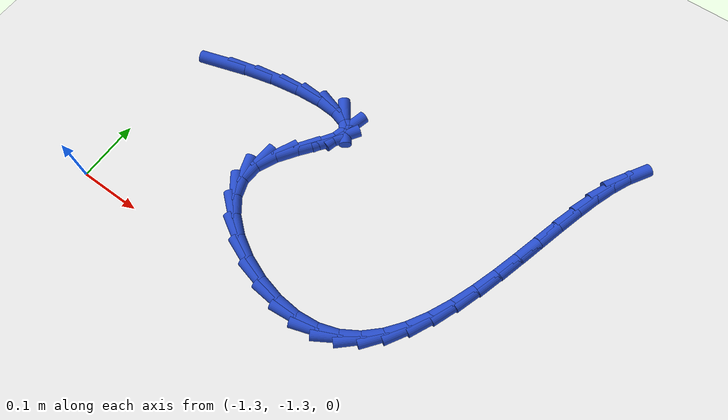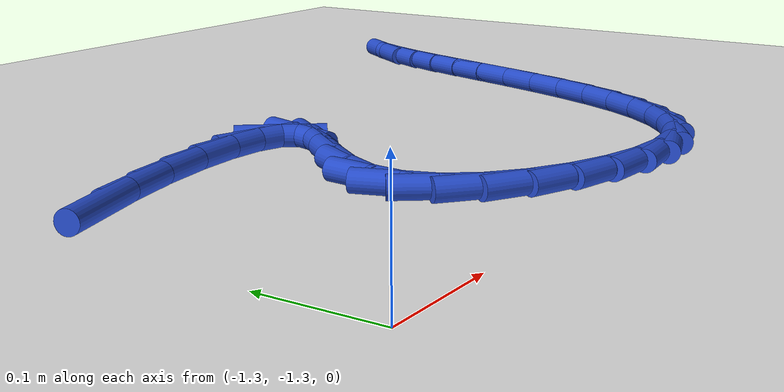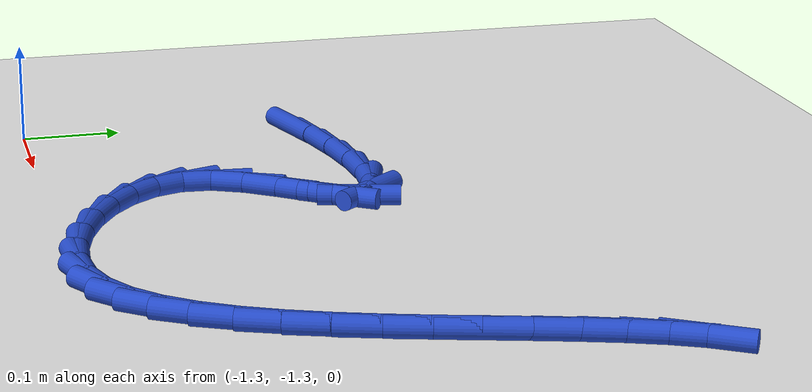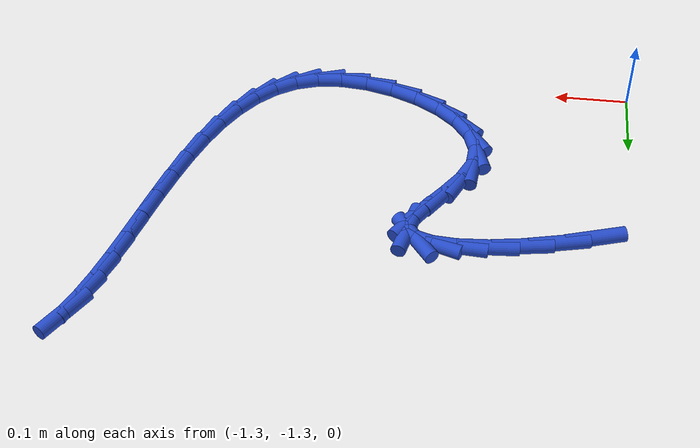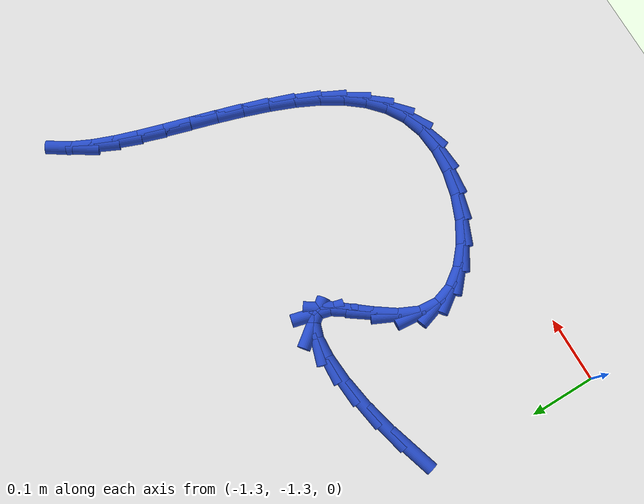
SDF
<sdf version="1.6">
 <world name="default">
  <model name="ground_plane">
   <static>1</static>
   <link name="link">
    <collision name="collision">
     <geometry><plane><normal>0 0 1</normal><size>100 100</size></plane></geometry>
     <surface><friction><ode><mu>100</mu><mu2>50</mu2></ode></friction></surface>
    </collision>
    <visual name="visual">
     <cast_shadows>0</cast_shadows>
     <geometry><plane><normal>0 0 1</normal><size>100 100</size></plane></geometry>
     <material>
      <script><uri>file://media/materials/scripts/gazebo.material</uri><name>Gazebo/WhiteGlow</name></script>
     </material>
    </visual>
   </link>
  </model>
  <model name="line">
   <link name="link_215">
    <pose>-1.2507736268615108 -1.02177599579038 0.01 0 1.57 0.2934605467391951</pose>
    <collision name="collision">
     <geometry><cylinder><radius>0.01</radius><length>0.08</length></cylinder></geometry>
    </collision>
    <visual name="visual">
     <material>
      <script><name>Gazebo/Blue</name><uri>file://media/materials/scripts/gazebo.material</uri></script>
     </material>
     <geometry><cylinder><radius>0.01</radius><length>0.08</length></cylinder></geometry>
    </visual>
   </link>
   <link name="link_216">
    <pose>-1.204982352005964 -1.0079385407797132 0.01 0 1.57 0.2246741513058187</pose>
    <collision name="collision">
     <geometry><cylinder><radius>0.01</radius><length>0.08</length></cylinder></geometry>
    </collision>
    <visual name="visual">
     <material>
      <script><name>Gazebo/Blue</name><uri>file://media/materials/scripts/gazebo.material</uri></script>
     </material>
     <geometry><cylinder><radius>0.01</radius><length>0.08</length></cylinder></geometry>
    </visual>
   </link>
   <link name="link_217">
    <pose>-1.1590670753384784 -0.9974454088323178 0.01 0 1.57 0.15213590867513985</pose>
    <collision name="collision">
     <geometry><cylinder><radius>0.01</radius><length>0.08</length></cylinder></geometry>
    </collision>
    <visual name="visual">
     <material>
      <script><name>Gazebo/Blue</name><uri>file://media/materials/scripts/gazebo.material</uri></script>
     </material>
     <geometry><cylinder><radius>0.01</radius><length>0.08</length></cylinder></geometry>
    </visual>
   </link>
   <link name="link_218">
    <pose>-1.1152984039838951 -0.9907347688441547 0.01 0 1.57 0.06387134855542105</pose>
    <collision name="collision">
     <geometry><cylinder><radius>0.01</radius><length>0.08</length></cylinder></geometry>
    </collision>
    <visual name="visual">
     <material>
      <script><name>Gazebo/Blue</name><uri>file://media/materials/scripts/gazebo.material</uri></script>
     </material>
     <geometry><cylinder><radius>0.01</radius><length>0.08</length></cylinder></geometry>
    </visual>
   </link>
   <link name="link_219">
    <pose>-1.0762245483038024 -0.9882356696646608 0.01 0 1.57 -0.06717601429145721</pose>
    <collision name="collision">
     <geometry><cylinder><radius>0.01</radius><length>0.08</length></cylinder></geometry>
    </collision>
    <visual name="visual">
     <material>
      <script><name>Gazebo/Blue</name><uri>file://media/materials/scripts/gazebo.material</uri></script>
     </material>
     <geometry><cylinder><radius>0.01</radius><length>0.08</length></cylinder></geometry>
    </visual>
   </link>
   <link name="link_220">
    <pose>-1.0443937186597894 -0.9903771601432736 0.01 0 1.57 -0.3162111757153607</pose>
    <collision name="collision">
     <geometry><cylinder><radius>0.01</radius><length>0.08</length></cylinder></geometry>
    </collision>
    <visual name="visual">
     <material>
      <script><name>Gazebo/Blue</name><uri>file://media/materials/scripts/gazebo.material</uri></script>
     </material>
     <geometry><cylinder><radius>0.01</radius><length>0.08</length></cylinder></geometry>
    </visual>
   </link>
   <link name="link_221">
    <pose>-1.0223541254134445 -0.9975882891294299 0.01 0 1.57 -0.9188998761295901</pose>
    <collision name="collision">
     <geometry><cylinder><radius>0.01</radius><length>0.08</length></cylinder></geometry>
    </collision>
    <visual name="visual">
     <material>
      <script><name>Gazebo/Blue</name><uri>file://media/materials/scripts/gazebo.material</uri></script>
     </material>
     <geometry><cylinder><radius>0.01</radius><length>0.08</length></cylinder></geometry>
    </visual>
   </link>
   <link name="link_222">
    <pose>-1.0126539789263564 -1.010298105472567 0.01 0 1.57 1.3241809344505466</pose>
    <collision name="collision">
     <geometry><cylinder><radius>0.01</radius><length>0.08</length></cylinder></geometry>
    </collision>
    <visual name="visual">
     <material>
      <script><name>Gazebo/Blue</name><uri>file://media/materials/scripts/gazebo.material</uri></script>
     </material>
     <geometry><cylinder><radius>0.01</radius><length>0.08</length></cylinder></geometry>
    </visual>
   </link>
   <link name="link_223">
    <pose>-1.017317076125975 -1.0288215902137625 0.01 0 1.57 0.9751295491909436</pose>
    <collision name="collision">
     <geometry><cylinder><radius>0.01</radius><length>0.08</length></cylinder></geometry>
    </collision>
    <visual name="visual">
     <material>
      <script><name>Gazebo/Blue</name><uri>file://media/materials/scripts/gazebo.material</uri></script>
     </material>
     <geometry><cylinder><radius>0.01</radius><length>0.08</length></cylinder></geometry>
    </visual>
   </link>
   <link name="link_224">
    <pose>-1.0332754723575097 -1.0523661940273832 0.01 0 1.57 0.9050565813839557</pose>
    <collision name="collision">
     <geometry><cylinder><radius>0.01</radius><length>0.08</length></cylinder></geometry>
    </collision>
    <visual name="visual">
     <material>
      <script><name>Gazebo/Blue</name><uri>file://media/materials/scripts/gazebo.material</uri></script>
     </material>
     <geometry><cylinder><radius>0.01</radius><length>0.08</length></cylinder></geometry>
    </visual>
   </link>
   <link name="link_225">
    <pose>-1.0545978044555704 -1.0795165309999861 0.01 0 1.57 0.9557508188441666</pose>
    <collision name="collision">
     <geometry><cylinder><radius>0.01</radius><length>0.08</length></cylinder></geometry>
    </collision>
    <visual name="visual">
     <material>
      <script><name>Gazebo/Blue</name><uri>file://media/materials/scripts/gazebo.material</uri></script>
     </material>
     <geometry><cylinder><radius>0.01</radius><length>0.08</length></cylinder></geometry>
    </visual>
   </link>
   <link name="link_226">
    <pose>-1.0753207930861448 -1.108850272971479 0.01 0 1.57 1.1310054829048446</pose>
    <collision name="collision">
     <geometry><cylinder><radius>0.01</radius><length>0.08</length></cylinder></geometry>
    </collision>
    <visual name="visual">
     <material>
      <script><name>Gazebo/Blue</name><uri>file://media/materials/scripts/gazebo.material</uri></script>
     </material>
     <geometry><cylinder><radius>0.01</radius><length>0.08</length></cylinder></geometry>
    </visual>
   </link>
   <link name="link_227">
    <pose>-1.08948115891522 -1.1389450917817698 0.01 0 1.57 1.4870643304369</pose>
    <collision name="collision">
     <geometry><cylinder><radius>0.01</radius><length>0.08</length></cylinder></geometry>
    </collision>
    <visual name="visual">
     <material>
      <script><name>Gazebo/Blue</name><uri>file://media/materials/scripts/gazebo.material</uri></script>
     </material>
     <geometry><cylinder><radius>0.01</radius><length>0.08</length></cylinder></geometry>
    </visual>
   </link>
   <link name="link_228">
    <pose>-1.0919575706579359 -1.1684513943912702 0.01 0 1.57 -1.254437589176644</pose>
    <collision name="collision">
     <geometry><cylinder><radius>0.01</radius><length>0.08</length></cylinder></geometry>
    </collision>
    <visual name="visual">
     <material>
      <script><name>Gazebo/Blue</name><uri>file://media/materials/scripts/gazebo.material</uri></script>
     </material>
     <geometry><cylinder><radius>0.01</radius><length>0.08</length></cylinder></geometry>
    </visual>
   </link>
   <link name="link_229">
    <pose>-1.082787156779484 -1.196465222371588 0.01 0 1.57 -0.9401292822760564</pose>
    <collision name="collision">
     <geometry><cylinder><radius>0.01</radius><length>0.08</length></cylinder></geometry>
    </collision>
    <visual name="visual">
     <material>
      <script><name>Gazebo/Blue</name><uri>file://media/materials/scripts/gazebo.material</uri></script>
     </material>
     <geometry><cylinder><radius>0.01</radius><length>0.08</length></cylinder></geometry>
    </visual>
   </link>
   <link name="link_230">
    <pose>-1.0639597815599644 -1.2222513123521213 0.01 0 1.57 -0.7111670671518204</pose>
    <collision name="collision">
     <geometry><cylinder><radius>0.01</radius><length>0.08</length></cylinder></geometry>
    </collision>
    <visual name="visual">
     <material>
      <script><name>Gazebo/Blue</name><uri>file://media/materials/scripts/gazebo.material</uri></script>
     </material>
     <geometry><cylinder><radius>0.01</radius><length>0.08</length></cylinder></geometry>
    </visual>
   </link>
   <link name="link_231">
    <pose>-1.0374689894441773 -1.2450747188883264 0.01 0 1.57 -0.5365094326504158</pose>
    <collision name="collision">
     <geometry><cylinder><radius>0.01</radius><length>0.08</length></cylinder></geometry>
    </collision>
    <visual name="visual">
     <material>
      <script><name>Gazebo/Blue</name><uri>file://media/materials/scripts/gazebo.material</uri></script>
     </material>
     <geometry><cylinder><radius>0.01</radius><length>0.08</length></cylinder></geometry>
    </visual>
   </link>
   <link name="link_232">
    <pose>-1.0053083248769208 -1.2642004965356575 0.01 0 1.57 -0.3890980996065452</pose>
    <collision name="collision">
     <geometry><cylinder><radius>0.01</radius><length>0.08</length></cylinder></geometry>
    </collision>
    <visual name="visual">
     <material>
      <script><name>Gazebo/Blue</name><uri>file://media/materials/scripts/gazebo.material</uri></script>
     </material>
     <geometry><cylinder><radius>0.01</radius><length>0.08</length></cylinder></geometry>
    </visual>
   </link>
   <link name="link_233">
    <pose>-0.9694713323029953 -1.2788936998495704 0.01 0 1.57 -0.24863115640515512</pose>
    <collision name="collision">
     <geometry><cylinder><radius>0.01</radius><length>0.08</length></cylinder></geometry>
    </collision>
    <visual name="visual">
     <material>
      <script><name>Gazebo/Blue</name><uri>file://media/materials/scripts/gazebo.material</uri></script>
     </material>
     <geometry><cylinder><radius>0.01</radius><length>0.08</length></cylinder></geometry>
    </visual>
   </link>
   <link name="link_234">
    <pose>-0.9319515561671968 -1.2884193833855204 0.01 0 1.57 -0.09706871862335166</pose>
    <collision name="collision">
     <geometry><cylinder><radius>0.01</radius><length>0.08</length></cylinder></geometry>
    </collision>
    <visual name="visual">
     <material>
      <script><name>Gazebo/Blue</name><uri>file://media/materials/scripts/gazebo.material</uri></script>
     </material>
     <geometry><cylinder><radius>0.01</radius><length>0.08</length></cylinder></geometry>
    </visual>
   </link>
   <link name="link_235">
    <pose>-0.8947425409143251 -1.2920426016989617 0.01 0 1.57 0.08612464945870009</pose>
    <collision name="collision">
     <geometry><cylinder><radius>0.01</radius><length>0.08</length></cylinder></geometry>
    </collision>
    <visual name="visual">
     <material>
      <script><name>Gazebo/Blue</name><uri>file://media/materials/scripts/gazebo.material</uri></script>
     </material>
     <geometry><cylinder><radius>0.01</radius><length>0.08</length></cylinder></geometry>
    </visual>
   </link>
   <link name="link_236">
    <pose>-0.8598370385704922 -1.2890289225815221 0.01 0 1.57 0.3111691616894061</pose>
    <collision name="collision">
     <geometry><cylinder><radius>0.01</radius><length>0.08</length></cylinder></geometry>
    </collision>
    <visual name="visual">
     <material>
      <script><name>Gazebo/Blue</name><uri>file://media/materials/scripts/gazebo.material</uri></script>
     </material>
     <geometry><cylinder><radius>0.01</radius><length>0.08</length></cylinder></geometry>
    </visual>
   </link>
   <link name="link_237">
    <pose>-0.8286701266132908 -1.279005110190978 0.01 0 1.57 0.5376543653025114</pose>
    <collision name="collision">
     <geometry><cylinder><radius>0.01</radius><length>0.08</length></cylinder></geometry>
    </collision>
    <visual name="visual">
     <material>
      <script><name>Gazebo/Blue</name><uri>file://media/materials/scripts/gazebo.material</uri></script>
     </material>
     <geometry><cylinder><radius>0.01</radius><length>0.08</length></cylinder></geometry>
    </visual>
   </link>
   <link name="link_238">
    <pose>-0.8011423708212478 -1.2625918059402026 0.01 0 1.57 0.7370813451370911</pose>
    <collision name="collision">
     <geometry><cylinder><radius>0.01</radius><length>0.08</length></cylinder></geometry>
    </collision>
    <visual name="visual">
     <material>
      <script><name>Gazebo/Blue</name><uri>file://media/materials/scripts/gazebo.material</uri></script>
     </material>
     <geometry><cylinder><radius>0.01</radius><length>0.08</length></cylinder></geometry>
    </visual>
   </link>
   <link name="link_239">
    <pose>-0.7768926892780715 -1.2405791160254827 0.01 0 1.57 0.8989009372194935</pose>
    <collision name="collision">
     <geometry><cylinder><radius>0.01</radius><length>0.08</length></cylinder></geometry>
    </collision>
    <visual name="visual">
     <material>
      <script><name>Gazebo/Blue</name><uri>file://media/materials/scripts/gazebo.material</uri></script>
     </material>
     <geometry><cylinder><radius>0.01</radius><length>0.08</length></cylinder></geometry>
    </visual>
   </link>
   <link name="link_240">
    <pose>-0.7555600000674704 -1.2137571466431059 0.01 0 1.57 1.023915001686959</pose>
    <collision name="collision">
     <geometry><cylinder><radius>0.01</radius><length>0.08</length></cylinder></geometry>
    </collision>
    <visual name="visual">
     <material>
      <script><name>Gazebo/Blue</name><uri>file://media/materials/scripts/gazebo.material</uri></script>
     </material>
     <geometry><cylinder><radius>0.01</radius><length>0.08</length></cylinder></geometry>
    </visual>
   </link>
   <link name="link_241">
    <pose>-0.7367832212731517 -1.1829160039893585 0.01 0 1.57 1.1178457105036343</pose>
    <collision name="collision">
     <geometry><cylinder><radius>0.01</radius><length>0.08</length></cylinder></geometry>
    </collision>
    <visual name="visual">
     <material>
      <script><name>Gazebo/Blue</name><uri>file://media/materials/scripts/gazebo.material</uri></script>
     </material>
     <geometry><cylinder><radius>0.01</radius><length>0.08</length></cylinder></geometry>
    </visual>
   </link>
   <link name="link_242">
    <pose>-0.7202012709788235 -1.1488457942605277 0.01 0 1.57 1.1868817869029848</pose>
    <collision name="collision">
     <geometry><cylinder><radius>0.01</radius><length>0.08</length></cylinder></geometry>
    </collision>
    <visual name="visual">
     <material>
      <script><name>Gazebo/Blue</name><uri>file://media/materials/scripts/gazebo.material</uri></script>
     </material>
     <geometry><cylinder><radius>0.01</radius><length>0.08</length></cylinder></geometry>
    </visual>
   </link>
   <link name="link_243">
    <pose>-0.7054530672681938 -1.1123366236529009 0.01 0 1.57 1.2359850914507575</pose>
    <collision name="collision">
     <geometry><cylinder><radius>0.01</radius><length>0.08</length></cylinder></geometry>
    </collision>
    <visual name="visual">
     <material>
      <script><name>Gazebo/Blue</name><uri>file://media/materials/scripts/gazebo.material</uri></script>
     </material>
     <geometry><cylinder><radius>0.01</radius><length>0.08</length></cylinder></geometry>
    </visual>
   </link>
   <link name="link_244">
    <pose>-0.6921775282249704 -1.0741785983627654 0.01 0 1.57 1.2685837341419244</pose>
    <collision name="collision">
     <geometry><cylinder><radius>0.01</radius><length>0.08</length></cylinder></geometry>
    </collision>
    <visual name="visual">
     <material>
      <script><name>Gazebo/Blue</name><uri>file://media/materials/scripts/gazebo.material</uri></script>
     </material>
     <geometry><cylinder><radius>0.01</radius><length>0.08</length></cylinder></geometry>
    </visual>
   </link>
   <link name="link_245">
    <pose>-0.6800135719328616 -1.0351618245864078 0.01 0 1.57 1.2866829284662527</pose>
    <collision name="collision">
     <geometry><cylinder><radius>0.01</radius><length>0.08</length></cylinder></geometry>
    </collision>
    <visual name="visual">
     <material>
      <script><name>Gazebo/Blue</name><uri>file://media/materials/scripts/gazebo.material</uri></script>
     </material>
     <geometry><cylinder><radius>0.01</radius><length>0.08</length></cylinder></geometry>
    </visual>
   </link>
   <link name="link_246">
    <pose>-0.6686001164755753 -0.9960764085201155 0.01 0 1.57 1.2909813285866256</pose>
    <collision name="collision">
     <geometry><cylinder><radius>0.01</radius><length>0.08</length></cylinder></geometry>
    </collision>
    <visual name="visual">
     <material>
      <script><name>Gazebo/Blue</name><uri>file://media/materials/scripts/gazebo.material</uri></script>
     </material>
     <geometry><cylinder><radius>0.01</radius><length>0.08</length></cylinder></geometry>
    </visual>
   </link>
   <link name="link_247">
    <pose>-0.6575760799368189 -0.9577124563601751 0.01 0 1.57 1.2808342621764037</pose>
    <collision name="collision">
     <geometry><cylinder><radius>0.01</radius><length>0.08</length></cylinder></geometry>
    </collision>
    <visual name="visual">
     <material>
      <script><name>Gazebo/Blue</name><uri>file://media/materials/scripts/gazebo.material</uri></script>
     </material>
     <geometry><cylinder><radius>0.01</radius><length>0.08</length></cylinder></geometry>
    </visual>
   </link>
   <link name="link_248">
    <pose>-0.6465803804003012 -0.9208600743028752 0.01 0 1.57 1.2539628456992957</pose>
    <collision name="collision">
     <geometry><cylinder><radius>0.01</radius><length>0.08</length></cylinder></geometry>
    </collision>
    <visual name="visual">
     <material>
      <script><name>Gazebo/Blue</name><uri>file://media/materials/scripts/gazebo.material</uri></script>
     </material>
     <geometry><cylinder><radius>0.01</radius><length>0.08</length></cylinder></geometry>
    </visual>
   </link>
   <link name="link_249">
    <pose>-0.6352519359497292 -0.8863093685445005 0.01 0 1.57 1.2057651845963004</pose>
    <collision name="collision">
     <geometry><cylinder><radius>0.01</radius><length>0.08</length></cylinder></geometry>
    </collision>
    <visual name="visual">
     <material>
      <script><name>Gazebo/Blue</name><uri>file://media/materials/scripts/gazebo.material</uri></script>
     </material>
     <geometry><cylinder><radius>0.01</radius><length>0.08</length></cylinder></geometry>
    </visual>
   </link>
   <link name="link_250">
    <pose>-0.6232296646688115 -0.8548504452813392 0.01 0 1.57 1.1279964732732581</pose>
    <collision name="collision">
     <geometry><cylinder><radius>0.01</radius><length>0.08</length></cylinder></geometry>
    </collision>
    <visual name="visual">
     <material>
      <script><name>Gazebo/Blue</name><uri>file://media/materials/scripts/gazebo.material</uri></script>
     </material>
     <geometry><cylinder><radius>0.01</radius><length>0.08</length></cylinder></geometry>
    </visual>
   </link>
   <link name="link_251">
    <pose>-0.6101524846412557 -0.8272734107096786 0.01 0 1.57 1.006643166201595</pose>
    <collision name="collision">
     <geometry><cylinder><radius>0.01</radius><length>0.08</length></cylinder></geometry>
    </collision>
    <visual name="visual">
     <material>
      <script><name>Gazebo/Blue</name><uri>file://media/materials/scripts/gazebo.material</uri></script>
     </material>
     <geometry><cylinder><radius>0.01</radius><length>0.08</length></cylinder></geometry>
    </visual>
   </link>
  </model>
 </world>
</sdf>
